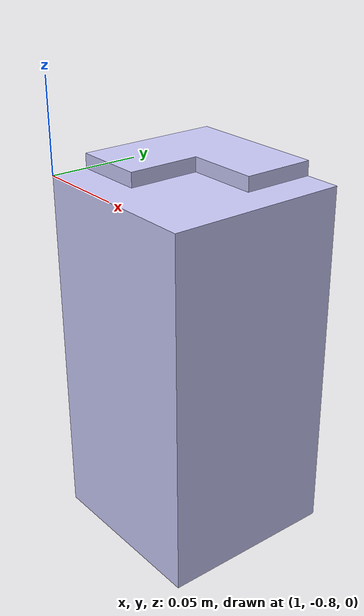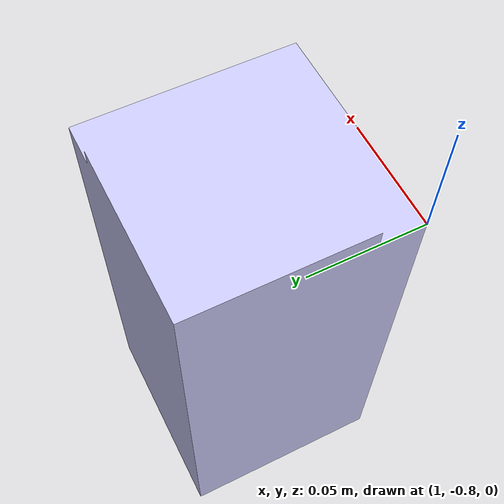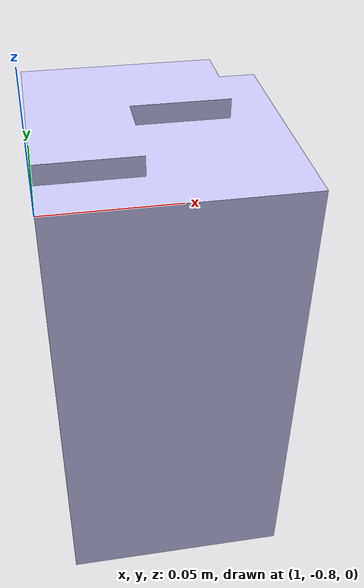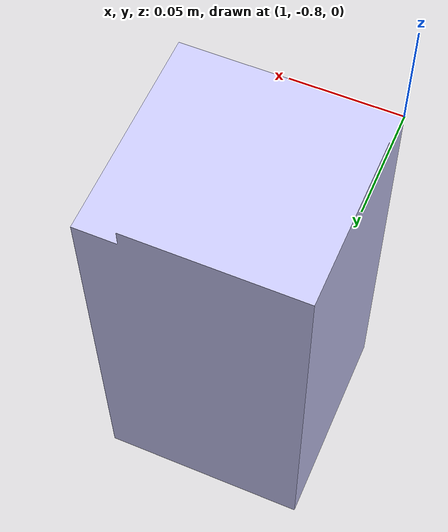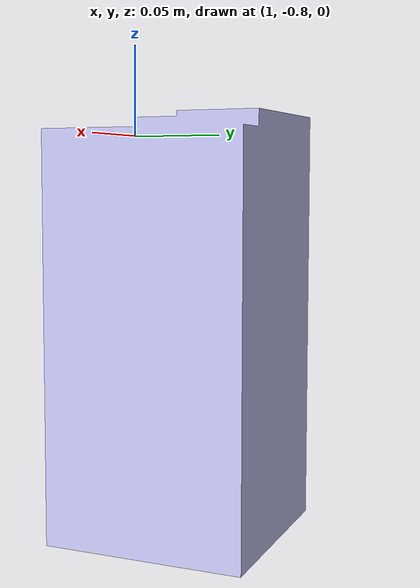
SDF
<?xml version="1.0" ?>
<sdf version="1.7">
  <model name="boxfoot">
    <static>false</static> <!-- Set to true if the object should not move -->
    <link name="sboxfoot_link">
      <!-- Inertial properties are still good to keep even if no collision,
           as they might be used for other purposes, though minimal for a static visual. -->
      <inertial>
        <mass>0.1</mass>
        <inertia>
          <ixx>0.0001</ixx>
          <ixy>0</ixy>
          <ixz>0</ixz>
          <iyy>0.0001</iyy>
          <iyz>0</iyz>
          <izz>0.0001</izz>
        </inertia>
      </inertial>
      <visual name="boxfoot_visual">
        <geometry>
          <mesh>
            <!--
              The URI path should be relative to where your model.sdf file is located.
              If the DAE and texture are in the same folder as the SDF, it's just the filename.
            -->
            <uri>model://boxfoot/boxfoot.dae</uri>
            <scale>0.01 0.01 0.01</scale> <!-- Adjust scale if needed -->
          </mesh>
        </geometry>
        <material>
          <lighting>true</lighting> <!-- Enable or disable lighting effects on the texture -->
          <script>
          </script>
        </material>
      </visual>
    </link>
  </model>
</sdf>
